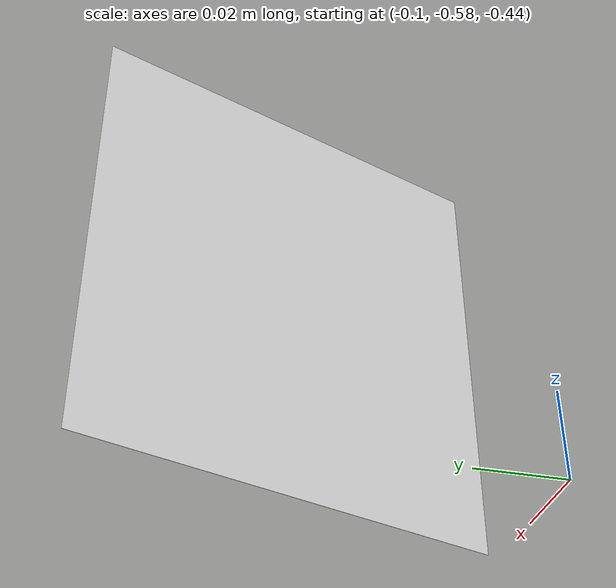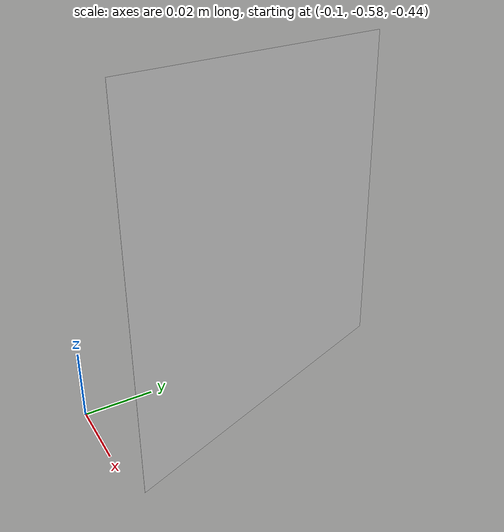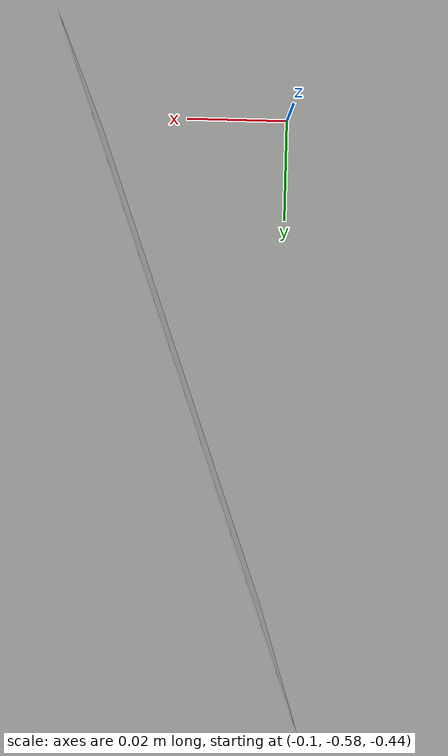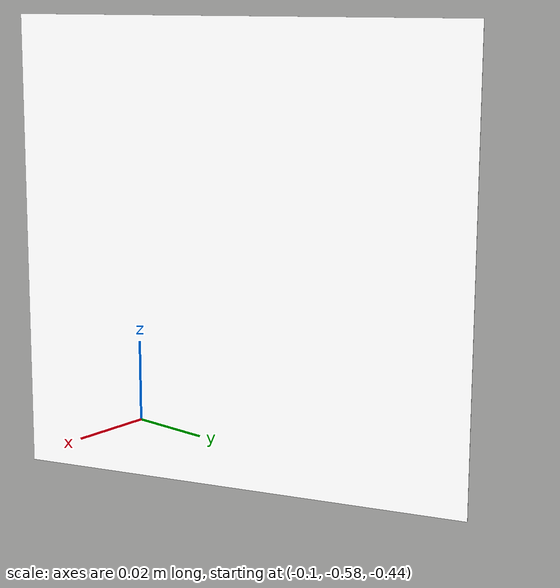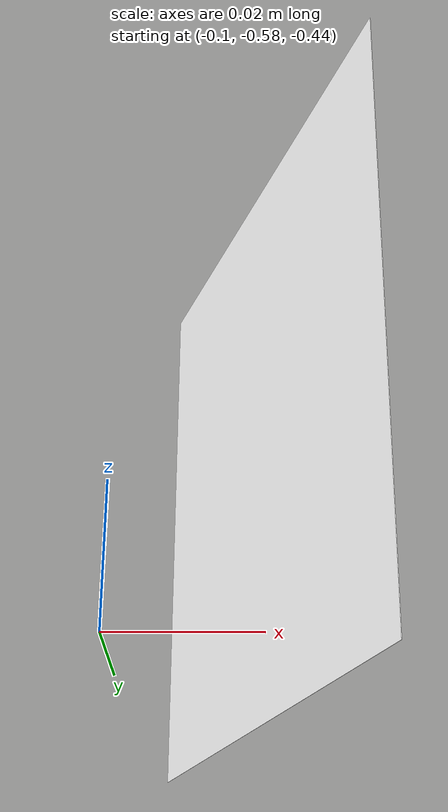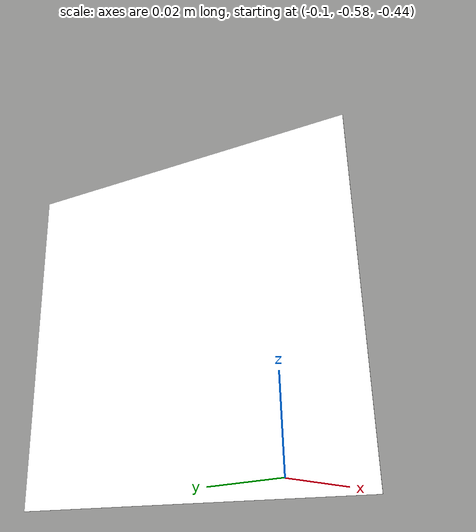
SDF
<?xml version="1.0" encoding="UTF-8"?>
<sdf version='1.9'>
  <model name='arucotag'>
    <static>true</static>
    <pose>-0.08 -0.53 -0.39 -2.81 -1.57 0.01 </pose>
    <link name='base'>
      <visual name='base_visual'>
        <geometry>
          <plane>
            <normal>0 0 1</normal>
            <size>0.1 0.1</size>
          </plane>
        </geometry>
        <material>
          <diffuse>1 1 1 1</diffuse>
          <specular>0.4 0.4 0.4 1</specular>
          <pbr>
            <metal>
              <albedo_map>model://arucotag/aruco-201.png</albedo_map>
            </metal>
          </pbr>
        </material>
      </visual>
    </link>
  </model>
</sdf>
